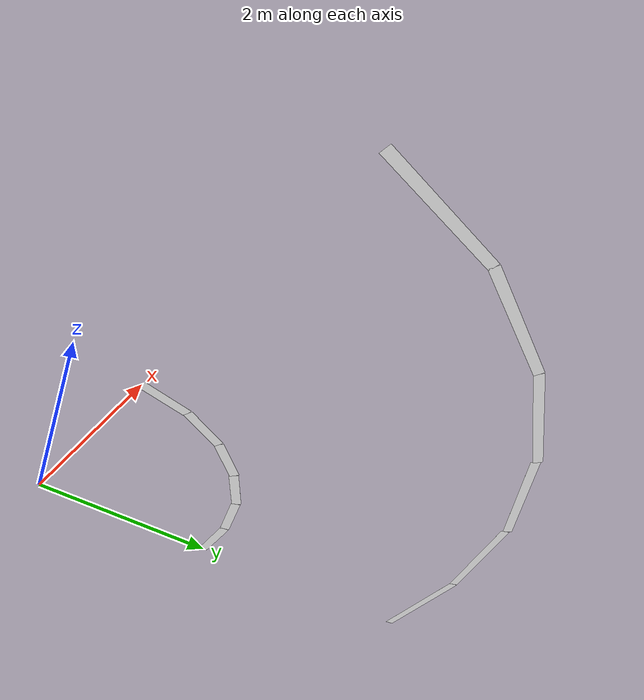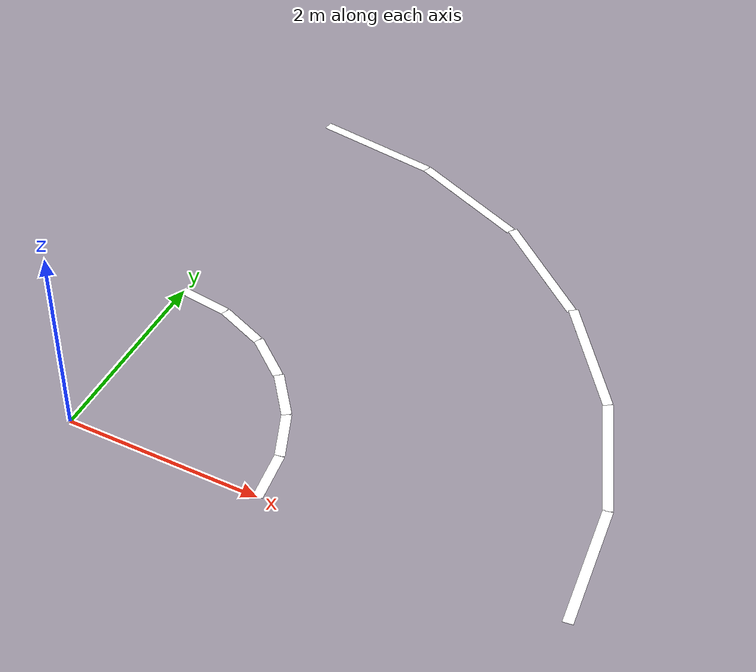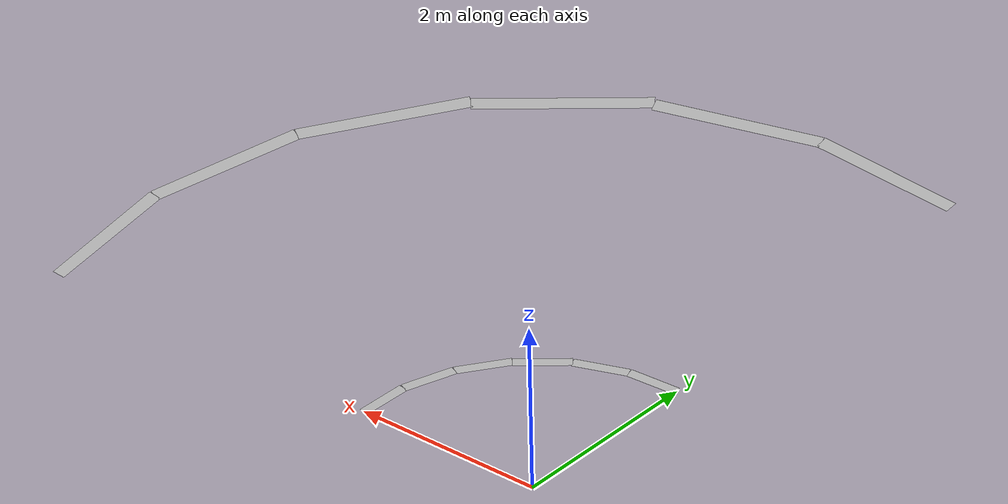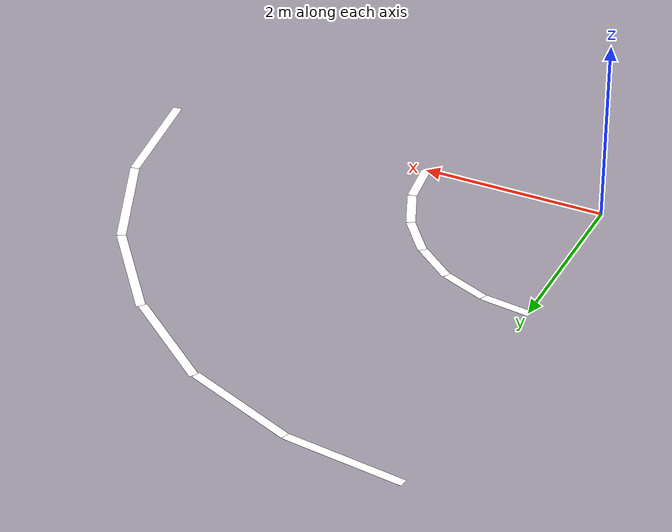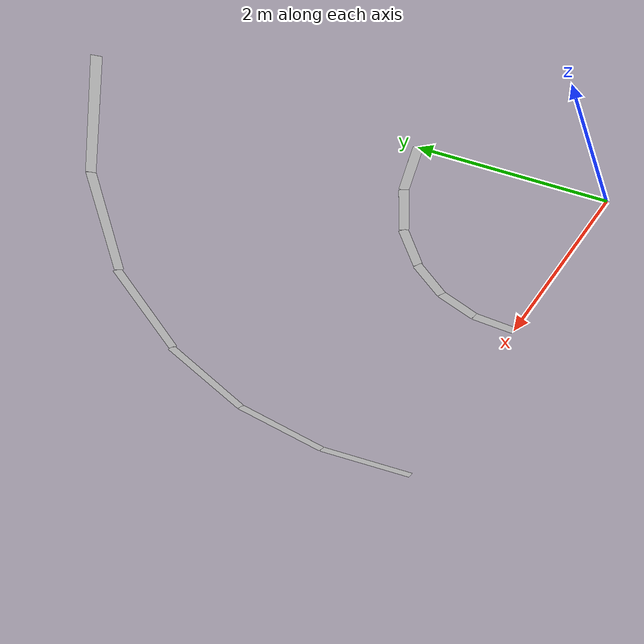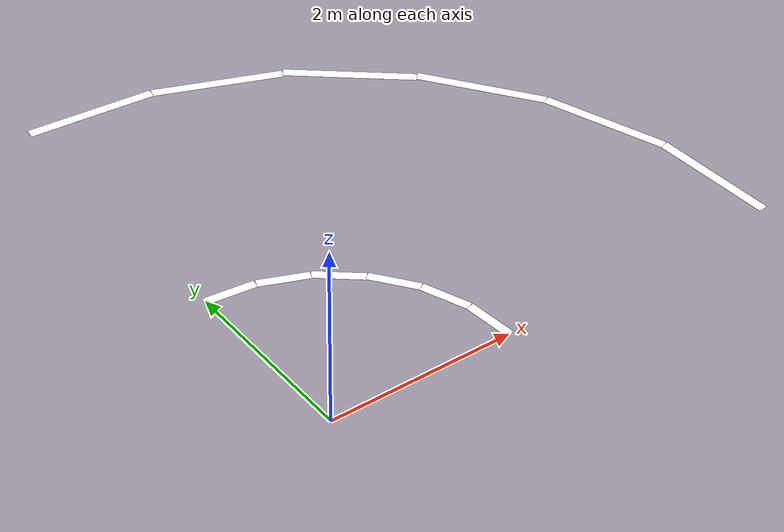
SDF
<?xml version="1.0"?>
<sdf version="1.4">
  <model name="Lane Curve Pair 2m">
    <static>true</static>
    <link name="link">
      <collision name="collision">
        <pose>0.5 0.5 -0.002 0 0 0</pose>
        <geometry>
          <box>
            <size>0.5 0.5 0.001</size>
          </box>
        </geometry>
      </collision>
      <visual name="lane_l0">
        <pose>4.9148 0.64705 0.001 0 0 1.7017</pose>
        <cast_shadows>false</cast_shadows>
        <geometry>
          <plane>
            <normal>0 0 1</normal>
            <size>1.309 0.10</size>
          </plane>
        </geometry>
        <material>
          <ambient>1 1 1 1</ambient>
          <diffuse>1 1 1 1</diffuse>
          <specular>0.5 0.5 0.5 1</specular>
        </material>
      </visual>
      <visual name="lane_l15">
        <pose>4.5799 1.897 0.001 0 0 1.9635</pose>
        <cast_shadows>false</cast_shadows>
        <geometry>
          <plane>
            <normal>0 0 1</normal>
            <size>1.309 0.10</size>
          </plane>
        </geometry>
        <material>
          <ambient>1 1 1 1</ambient>
          <diffuse>1 1 1 1</diffuse>
          <specular>0.5 0.5 0.5 1</specular>
        </material>
      </visual>
      <visual name="lane_l30">
        <pose>3.9328 3.0178 0.001 0 0 2.2253</pose>
        <cast_shadows>false</cast_shadows>
        <geometry>
          <plane>
            <normal>0 0 1</normal>
            <size>1.309 0.10</size>
          </plane>
        </geometry>
        <material>
          <ambient>1 1 1 1</ambient>
          <diffuse>1 1 1 1</diffuse>
          <specular>0.5 0.5 0.5 1</specular>
        </material>
      </visual>
      <visual name="lane_l45">
        <pose>3.0178 3.9328 0.001 0 0 2.4571</pose>
        <cast_shadows>false</cast_shadows>
        <geometry>
          <plane>
            <normal>0 0 1</normal>
            <size>1.309 0.10</size>
          </plane>
        </geometry>
        <material>
          <ambient>1 1 1 1</ambient>
          <diffuse>1 1 1 1</diffuse>
          <specular>0.5 0.5 0.5 1</specular>
        </material>
      </visual>
      <visual name="lane_l60">
        <pose>1.897 4.57990 0.001 0 0 2.7489</pose>
        <cast_shadows>false</cast_shadows>
        <geometry>
          <plane>
            <normal>0 0 1</normal>
            <size>1.309 0.10</size>
          </plane>
        </geometry>
        <material>
          <ambient>1 1 1 1</ambient>
          <diffuse>1 1 1 1</diffuse>
          <specular>0.5 0.5 0.5 1</specular>
        </material>
      </visual>
      <visual name="lane_l75">
        <pose>0.64705 4.9148 0.001 0 0 3.0107</pose>
        <cast_shadows>false</cast_shadows>
        <geometry>
          <plane>
            <normal>0 0 1</normal>
            <size>1.309 0.10</size>
          </plane>
        </geometry>
        <material>
          <ambient>1 1 1 1</ambient>
          <diffuse>1 1 1 1</diffuse>
          <specular>0.5 0.5 0.5 1</specular>
        </material>
      </visual>

      <visual name="lane_r0">
        <pose>1.9659 0.25882 0.001 0 0 1.7017</pose>
        <cast_shadows>false</cast_shadows>
        <geometry>
          <plane>
            <normal>0 0 1</normal>
            <size>0.5236 0.10</size>
          </plane>
        </geometry>
        <material>
          <ambient>1 1 1 1</ambient>
          <diffuse>1 1 1 1</diffuse>
          <specular>0.5 0.5 0.5 1</specular>
        </material>
      </visual>
      <visual name="lane_r15">
        <pose>1.832 0.75882 0.001 0 0 1.9635</pose>
        <cast_shadows>false</cast_shadows>
        <geometry>
          <plane>
            <normal>0 0 1</normal>
            <size>0.5236 0.10</size>
          </plane>
        </geometry>
        <material>
          <ambient>1 1 1 1</ambient>
          <diffuse>1 1 1 1</diffuse>
          <specular>0.5 0.5 0.5 1</specular>
        </material>
      </visual>
      <visual name="lane_r30">
        <pose>1.5731 1.2071 0.001 0 0 2.2253</pose>
        <cast_shadows>false</cast_shadows>
        <geometry>
          <plane>
            <normal>0 0 1</normal>
            <size>0.5236 0.10</size>
          </plane>
        </geometry>
        <material>
          <ambient>1 1 1 1</ambient>
          <diffuse>1 1 1 1</diffuse>
          <specular>0.5 0.5 0.5 1</specular>
        </material>
      </visual>
      <visual name="lane_r45">
        <pose>1.2071 1.5731 0.001 0 0 2.4571</pose>
        <cast_shadows>false</cast_shadows>
        <geometry>
          <plane>
            <normal>0 0 1</normal>
            <size>0.5236 0.10</size>
          </plane>
        </geometry>
        <material>
          <ambient>1 1 1 1</ambient>
          <diffuse>1 1 1 1</diffuse>
          <specular>0.5 0.5 0.5 1</specular>
        </material>
      </visual>
      <visual name="lane_r60">
        <pose>0.75882 1.832 0.001 0 0 2.7489</pose>
        <cast_shadows>false</cast_shadows>
        <geometry>
          <plane>
            <normal>0 0 1</normal>
            <size>0.5236 0.10</size>
          </plane>
        </geometry>
        <material>
          <ambient>1 1 1 1</ambient>
          <diffuse>1 1 1 1</diffuse>
          <specular>0.5 0.5 0.5 1</specular>
        </material>
      </visual>
      <visual name="lane_r75">
        <pose>0.25882 1.9659 0.001 0 0 3.0107</pose>
        <cast_shadows>false</cast_shadows>
        <geometry>
          <plane>
            <normal>0 0 1</normal>
            <size>0.5236 0.10</size>
          </plane>
        </geometry>
        <material>
          <ambient>1 1 1 1</ambient>
          <diffuse>1 1 1 1</diffuse>
          <specular>0.5 0.5 0.5 1</specular>
        </material>
      </visual>
    </link>
  </model>
</sdf>
